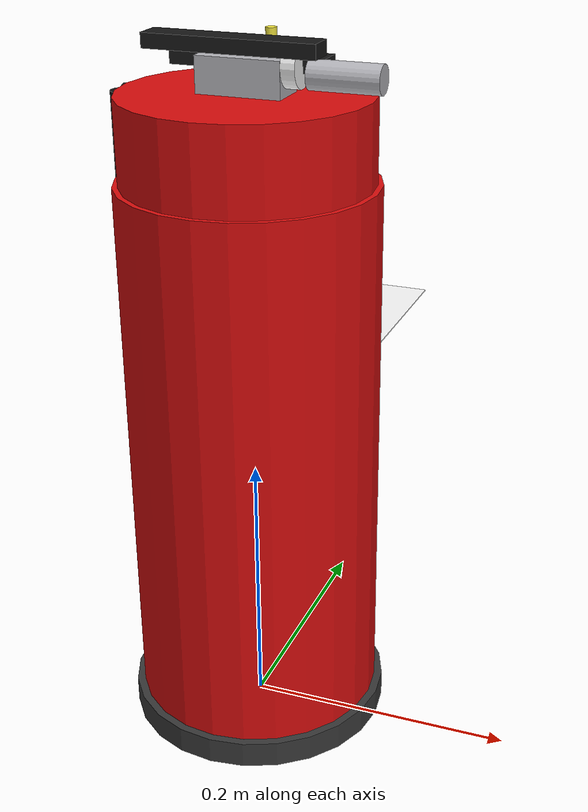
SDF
<?xml version="1.0" ?>
<sdf version="1.6">
  <model name="fire_extinguisher_10lb">
    <!-- Set true if you want it fixed in place -->
    <static>false</static>

    <link name="extinguisher">
      <!-- Dimensions (meters)
           body diameter 0.184 -> radius r = 0.092
           overall height ~0.52
           collision length 0.50 (simple & stable), center z=0.25
      -->
      <gravity>true</gravity>
      <self_collide>false</self_collide>

      <!-- Light-ish filled mass with reasonable inertia for a cylinder -->
      <inertial>
        <mass>4.5</mass>
        <inertia>
          <!-- Ixx = Iyy = (1/12) m (3 r^2 + h^2), Izz = 0.5 m r^2  -->
          <ixx>0.102</ixx>
          <iyy>0.102</iyy>
          <izz>0.019</izz>
          <ixy>0</ixy><ixz>0</ixz><iyz>0</iyz>
        </inertia>
      </inertial>

      <!-- ===== Collision (single cylinder) ===== -->
      <collision name="col_body">
        <pose>0 0 0.25 0 0 0</pose>
        <geometry>
          <cylinder>
            <radius>0.092</radius>
            <length>0.50</length>
          </cylinder>
        </geometry>
        <surface>
          <friction><ode><mu>0.9</mu><mu2>0.9</mu2></ode></friction>
        </surface>
      </collision>

      <!-- ===== VISUALS ===== -->

      <!-- Red main body (slightly shorter than collision) -->
      <visual name="vis_body">
        <pose>0 0 0.21 0 0 0</pose>
        <geometry>
          <cylinder>
            <radius>0.092</radius>
            <length>0.42</length>
          </cylinder>
        </geometry>
        <material>
          <ambient>0.35 0.02 0.02 1</ambient>
          <diffuse>0.85 0.05 0.05 1</diffuse>
          <specular>0.25 0.25 0.25 1</specular>
        </material>
      </visual>

      <!-- Base ring -->
      <visual name="vis_base_ring">
        <pose>0 0 0.01 0 0 0</pose>
        <geometry>
          <cylinder>
            <radius>0.098</radius>
            <length>0.02</length>
          </cylinder>
        </geometry>
        <material>
          <ambient>0.15 0.15 0.15 1</ambient>
          <diffuse>0.22 0.22 0.22 1</diffuse>
        </material>
      </visual>

      <!-- Dome/top skirt -->
      <visual name="vis_top_skirt">
        <pose>0 0 0.45 0 0 0</pose>
        <geometry>
          <cylinder>
            <radius>0.088</radius>
            <length>0.06</length>
          </cylinder>
        </geometry>
        <material>
          <ambient>0.35 0.02 0.02 1</ambient>
          <diffuse>0.85 0.05 0.05 1</diffuse>
        </material>
      </visual>

      <!-- Valve block -->
      <visual name="vis_valve_block">
        <pose>0 0 0.49 0 0 0</pose>
        <geometry>
          <box><size>0.06 0.03 0.03</size></box>
        </geometry>
        <material>
          <ambient>0.45 0.45 0.45 1</ambient>
          <diffuse>0.70 0.70 0.72 1</diffuse>
        </material>
      </visual>

      <!-- Pull pin -->
      <visual name="vis_pin">
        <pose>0 0.045 0.49 0 0 0</pose>
        <geometry>
          <cylinder><radius>0.004</radius><length>0.05</length></cylinder>
        </geometry>
        <material>
          <ambient>0.9 0.85 0.2 1</ambient>
          <diffuse>0.95 0.90 0.25 1</diffuse>
        </material>
      </visual>

      <!-- Pressure gauge (front) -->
      <visual name="vis_gauge">
        <pose>0.035 0 0.50 0 1.5708 0</pose> <!-- rotate to face outward -->
        <geometry>
          <cylinder><radius>0.015</radius><length>0.01</length></cylinder>
        </geometry>
        <material>
          <ambient>0.9 0.9 0.9 1</ambient>
          <diffuse>0.95 0.95 0.95 1</diffuse>
        </material>
      </visual>

      <!-- Squeeze handle -->
      <visual name="vis_handle_top">
        <pose>0 -0.02 0.515 0 0 0</pose>
        <geometry><box><size>0.12 0.02 0.01</size></box></geometry>
        <material><ambient>0.05 0.05 0.05 1</ambient><diffuse>0.09 0.09 0.09 1</diffuse></material>
      </visual>
      <visual name="vis_handle_bottom">
        <pose>0 0.01 0.50 0 0 0</pose>
        <geometry><box><size>0.11 0.02 0.01</size></box></geometry>
        <material><ambient>0.05 0.05 0.05 1</ambient><diffuse>0.09 0.09 0.09 1</diffuse></material>
      </visual>

      <!-- Short outlet stub from valve -->
      <visual name="vis_valve_stub">
        <pose>0.07 0 0.495 0 1.5708 0</pose> <!-- cylinder along X -->
        <geometry><cylinder><radius>0.01</radius><length>0.05</length></cylinder></geometry>
        <material><ambient>0.45 0.45 0.45 1</ambient><diffuse>0.70 0.70 0.72 1</diffuse></material>
      </visual>

      <!-- Hose clamp near top -->
      <visual name="vis_hose_clamp">
        <pose>-0.085 0 0.39 0 0 0</pose>
        <geometry><box><size>0.02 0.02 0.06</size></box></geometry>
        <material><ambient>0.05 0.05 0.05 1</ambient><diffuse>0.09 0.09 0.09 1</diffuse></material>
      </visual>

      <!-- Hose down the side -->
      <visual name="vis_hose_vertical">
        <pose>-0.09 0 0.30 0 0 0</pose>
        <geometry>
          <cylinder><radius>0.01</radius><length>0.35</length></cylinder>
        </geometry>
        <material><ambient>0.02 0.02 0.02 1</ambient><diffuse>0.06 0.06 0.06 1</diffuse></material>
      </visual>

      <!-- Hose elbow near top to valve -->
      <visual name="vis_hose_elbow">
        <pose>-0.06 0 0.47 0 1.5708 0</pose> <!-- along X -->
        <geometry><cylinder><radius>0.01</radius><length>0.06</length></cylinder></geometry>
        <material><ambient>0.02 0.02 0.02 1</ambient><diffuse>0.06 0.06 0.06 1</diffuse></material>
      </visual>

      <!-- Nozzle at lower end (angled slightly forward) -->
      <visual name="vis_nozzle">
        <pose>-0.09 0.02 0.12 0.3491 0 0</pose> <!-- 20° pitch -->
        <geometry><cylinder><radius>0.014</radius><length>0.09</length></cylinder></geometry>
        <material><ambient>0.04 0.04 0.04 1</ambient><diffuse>0.08 0.08 0.08 1</diffuse></material>
      </visual>

      <!-- Simple front label plate -->
      <visual name="vis_label">
        <pose>0.0 0.093 0.28 1.5708 0 0</pose> <!-- thin plate on front -->
        <geometry><box><size>0.14 0.001 0.22</size></box></geometry>
        <material>
          <ambient>0.98 0.98 0.98 1</ambient>
          <diffuse>0.98 0.98 0.98 1</diffuse>
        </material>
      </visual>

    </link>
  </model>
</sdf>
